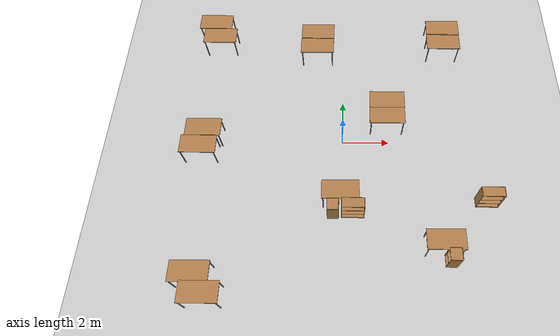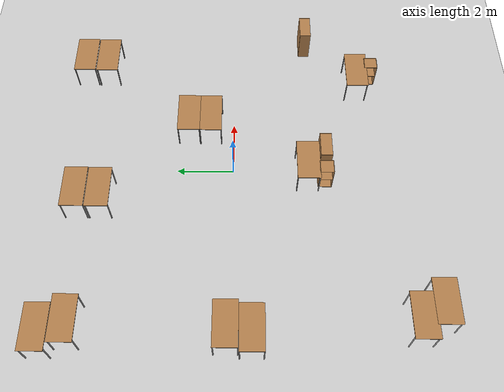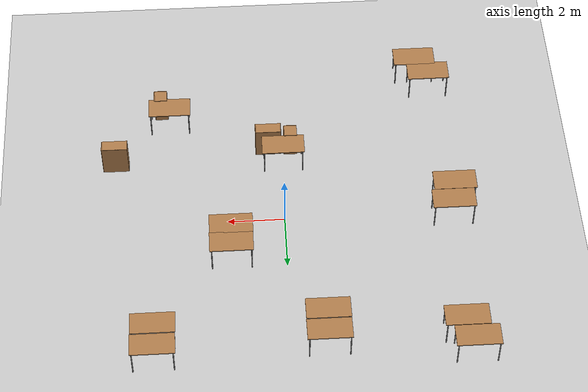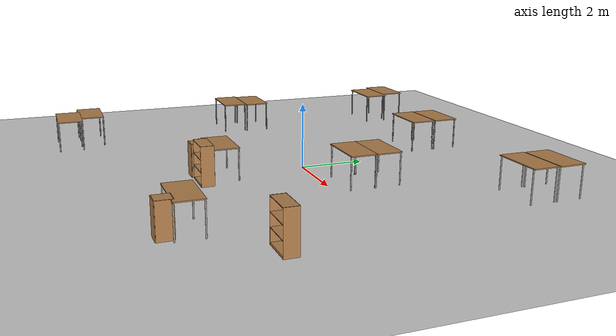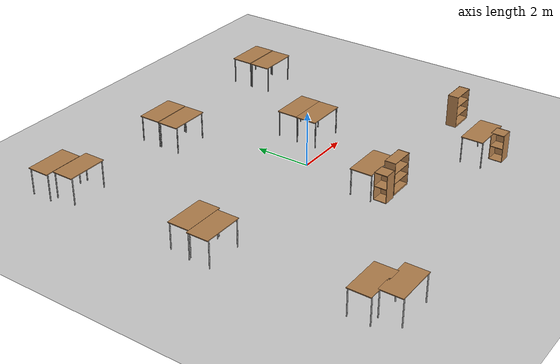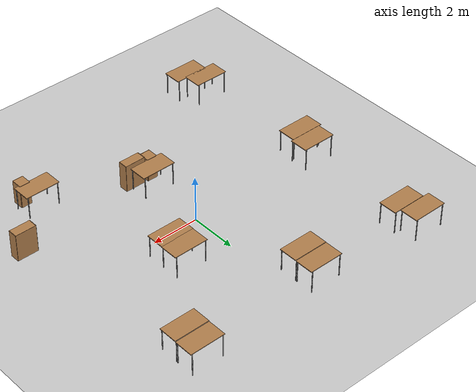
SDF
<sdf version="1.6">
 <world name="default">
  <light name="sun" type="directional">
   <cast_shadows>0</cast_shadows>
   <pose>0 0 10 0 -0 0</pose>
   <diffuse>0.8 0.8 0.8 1</diffuse>
   <specular>0.1 0.1 0.1 1</specular>
   <attenuation>
    <range>1000</range>
    <constant>0.9</constant>
    <linear>0.01</linear>
    <quadratic>0.001</quadratic>
   </attenuation>
   <direction>-0.5 0.5 -1</direction>
  </light>
  <model name="ground_plane">
   <static>1</static>
   <link name="link">
    <collision name="collision">
     <geometry><plane><normal>0 0 1</normal><size>100 100</size></plane></geometry>
     <surface><friction><ode><mu>100</mu><mu2>50</mu2></ode></friction></surface>
    </collision>
    <visual name="visual">
     <cast_shadows>0</cast_shadows>
     <geometry><plane><normal>0 0 1</normal><size>100 100</size></plane></geometry>
     <material>
      <script><uri>file://media/materials/scripts/gazebo.material</uri><name>Gazebo/Grey</name></script>
     </material>
    </visual>
   </link>
  </model>
  <gravity>0 0 -9.8</gravity>
  <magnetic_field>6e-06 2.3e-05 -4.2e-05</magnetic_field>
  <atmosphere type="adiabatic"/>
  <physics name="default_physics" default="0" type="ode">
   <max_step_size>0.001</max_step_size>
   <real_time_factor>1</real_time_factor>
   <real_time_update_rate>1000</real_time_update_rate>
  </physics>
  <scene><ambient>0.4 0.4 0.4 1</ambient><background>0.7 0.7 0.7 1</background><shadows>1</shadows></scene>
  <spherical_coordinates>
   <surface_model>EARTH_WGS84</surface_model>
   <latitude_deg>0</latitude_deg>
   <longitude_deg>0</longitude_deg>
   <elevation>0</elevation>
   <heading_deg>0</heading_deg>
  </spherical_coordinates>
  <model name="cabinet">
   <static>1</static>
   <link name="cabinet_bottom_plate">
    <inertial>
     <pose>0 0 -1 0 -0 0</pose>
     <inertia><ixx>2.05</ixx><ixy>0</ixy><ixz>0</ixz><iyy>2.05</iyy><iyz>0</iyz><izz>2.05</izz></inertia>
     <mass>25</mass>
    </inertial>
    <collision name="cabinet_bottom_plate_geom">
     <pose>0 0 0.01 0 -0 0</pose>
     <geometry><box><size>0.45 0.45 0.02</size></box></geometry>
    </collision>
    <visual name="cabinet_bottom_plate_geom_visual">
     <pose>0 0 0.01 0 -0 0</pose>
     <geometry><box><size>0.45 0.45 0.02</size></box></geometry>
     <material>
      <script><uri>file://media/materials/scripts/gazebo.material</uri><name>Gazebo/Wood</name></script>
     </material>
    </visual>
    <collision name="cabinet_bottom_plate_geom_cabinet_back_plate">
     <pose>0.235 0 0.51 0 -0 0</pose>
     <geometry><box><size>0.02 0.45 1.02</size></box></geometry>
    </collision>
    <visual name="cabinet_bottom_plate_geom_cabinet_back_plate_visual">
     <pose>0.235 0 0.51 0 -0 0</pose>
     <geometry><box><size>0.02 0.45 1.02</size></box></geometry>
     <material>
      <script><uri>file://media/materials/scripts/gazebo.material</uri><name>Gazebo/Wood</name></script>
     </material>
    </visual>
    <collision name="cabinet_bottom_plate_geom_cabinet_left_plate">
     <pose>0 0.235 0.51 0 -0 0</pose>
     <geometry><box><size>0.45 0.02 1.02</size></box></geometry>
    </collision>
    <visual name="cabinet_bottom_plate_geom_cabinet_left_plate_visual">
     <pose>0 0.235 0.51 0 -0 0</pose>
     <geometry><box><size>0.45 0.02 1.02</size></box></geometry>
     <material>
      <script><uri>file://media/materials/scripts/gazebo.material</uri><name>Gazebo/Wood</name></script>
     </material>
    </visual>
    <collision name="cabinet_bottom_plate_geom_cabinet_middle_plate">
     <pose>0 0 0.51 0 -0 0</pose>
     <geometry><box><size>0.45 0.45 0.02</size></box></geometry>
    </collision>
    <visual name="cabinet_bottom_plate_geom_cabinet_middle_plate_visual">
     <pose>0 0 0.51 0 -0 0</pose>
     <geometry><box><size>0.45 0.45 0.02</size></box></geometry>
     <material>
      <script><uri>file://media/materials/scripts/gazebo.material</uri><name>Gazebo/Wood</name></script>
     </material>
    </visual>
    <collision name="cabinet_bottom_plate_geom_cabinet_right_plate">
     <pose>0 -0.235 0.51 0 -0 0</pose>
     <geometry><box><size>0.45 0.02 1.02</size></box></geometry>
    </collision>
    <visual name="cabinet_bottom_plate_geom_cabinet_right_plate_visual">
     <pose>0 -0.235 0.51 0 -0 0</pose>
     <geometry><box><size>0.45 0.02 1.02</size></box></geometry>
     <material>
      <script><uri>file://media/materials/scripts/gazebo.material</uri><name>Gazebo/Wood</name></script>
     </material>
    </visual>
    <collision name="cabinet_bottom_plate_geom_cabinet_top_plate">
     <pose>0 0 1.01 0 -0 0</pose>
     <geometry><box><size>0.45 0.45 0.02</size></box></geometry>
    </collision>
    <visual name="cabinet_bottom_plate_geom_cabinet_top_plate_visual">
     <pose>0 0 1.01 0 -0 0</pose>
     <geometry><box><size>0.45 0.45 0.02</size></box></geometry>
     <material>
      <script><uri>file://media/materials/scripts/gazebo.material</uri><name>Gazebo/Wood</name></script>
     </material>
    </visual>
   </link>
   <pose>4.23229 -5.13046 0 0 -0 0</pose>
  </model>
  <model name="bookshelf">
   <static>1</static>
   <link name="link">
    <inertial><mass>1</mass></inertial>
    <collision name="back">
     <pose>0 0.005 0.6 0 -0 0</pose>
     <geometry><box><size>0.9 0.01 1.2</size></box></geometry>
    </collision>
    <visual name="visual1">
     <pose>0 0.005 0.6 0 -0 0</pose>
     <geometry><box><size>0.9 0.01 1.2</size></box></geometry>
     <material>
      <script><uri>file://media/materials/scripts/gazebo.material</uri><name>Gazebo/Wood</name></script>
     </material>
    </visual>
    <collision name="left_side">
     <pose>0.45 -0.195 0.6 0 -0 0</pose>
     <geometry><box><size>0.02 0.4 1.2</size></box></geometry>
    </collision>
    <visual name="visual2">
     <pose>0.45 -0.195 0.6 0 -0 0</pose>
     <geometry><box><size>0.02 0.4 1.2</size></box></geometry>
     <material>
      <script><uri>file://media/materials/scripts/gazebo.material</uri><name>Gazebo/Wood</name></script>
     </material>
    </visual>
    <collision name="right_side">
     <pose>-0.45 -0.195 0.6 0 -0 0</pose>
     <geometry><box><size>0.02 0.4 1.2</size></box></geometry>
    </collision>
    <visual name="visual3">
     <pose>-0.45 -0.195 0.6 0 -0 0</pose>
     <geometry><box><size>0.02 0.4 1.2</size></box></geometry>
     <material>
      <script><uri>file://media/materials/scripts/gazebo.material</uri><name>Gazebo/Wood</name></script>
     </material>
    </visual>
    <collision name="bottom">
     <pose>0 -0.195 0.03 0 -0 0</pose>
     <geometry><box><size>0.88 0.4 0.06</size></box></geometry>
    </collision>
    <visual name="visual4">
     <pose>0 -0.195 0.03 0 -0 0</pose>
     <geometry><box><size>0.88 0.4 0.06</size></box></geometry>
     <material>
      <script><uri>file://media/materials/scripts/gazebo.material</uri><name>Gazebo/Wood</name></script>
     </material>
    </visual>
    <collision name="top">
     <pose>0 -0.195 1.19 0 -0 0</pose>
     <geometry><box><size>0.88 0.4 0.02</size></box></geometry>
    </collision>
    <visual name="visual5">
     <pose>0 -0.195 1.19 0 -0 0</pose>
     <geometry><box><size>0.88 0.4 0.02</size></box></geometry>
     <material>
      <script><uri>file://media/materials/scripts/gazebo.material</uri><name>Gazebo/Wood</name></script>
     </material>
    </visual>
    <collision name="low_shelf">
     <pose>0 -0.195 0.43 0 -0 0</pose>
     <geometry><box><size>0.88 0.4 0.02</size></box></geometry>
    </collision>
    <visual name="visual6">
     <pose>0 -0.195 0.43 0 -0 0</pose>
     <geometry><box><size>0.88 0.4 0.02</size></box></geometry>
     <material>
      <script><uri>file://media/materials/scripts/gazebo.material</uri><name>Gazebo/Wood</name></script>
     </material>
    </visual>
    <collision name="high_shelf">
     <pose>0 -0.195 0.8 0 -0 0</pose>
     <geometry><box><size>0.88 0.4 0.02</size></box></geometry>
    </collision>
    <visual name="visual7">
     <pose>0 -0.195 0.8 0 -0 0</pose>
     <geometry><box><size>0.88 0.4 0.02</size></box></geometry>
     <material>
      <script><uri>file://media/materials/scripts/gazebo.material</uri><name>Gazebo/Wood</name></script>
     </material>
    </visual>
   </link>
   <pose>5.88793 -2.5165 0 0 -0 0</pose>
  </model>
  <model name="bookshelf_0">
   <static>1</static>
   <link name="link">
    <inertial><mass>1</mass></inertial>
    <collision name="back">
     <pose>0 0.005 0.6 0 -0 0</pose>
     <geometry><box><size>0.9 0.01 1.2</size></box></geometry>
    </collision>
    <visual name="visual1">
     <pose>0 0.005 0.6 0 -0 0</pose>
     <geometry><box><size>0.9 0.01 1.2</size></box></geometry>
     <material>
      <script><uri>file://media/materials/scripts/gazebo.material</uri><name>Gazebo/Wood</name></script>
     </material>
    </visual>
    <collision name="left_side">
     <pose>0.45 -0.195 0.6 0 -0 0</pose>
     <geometry><box><size>0.02 0.4 1.2</size></box></geometry>
    </collision>
    <visual name="visual2">
     <pose>0.45 -0.195 0.6 0 -0 0</pose>
     <geometry><box><size>0.02 0.4 1.2</size></box></geometry>
     <material>
      <script><uri>file://media/materials/scripts/gazebo.material</uri><name>Gazebo/Wood</name></script>
     </material>
    </visual>
    <collision name="right_side">
     <pose>-0.45 -0.195 0.6 0 -0 0</pose>
     <geometry><box><size>0.02 0.4 1.2</size></box></geometry>
    </collision>
    <visual name="visual3">
     <pose>-0.45 -0.195 0.6 0 -0 0</pose>
     <geometry><box><size>0.02 0.4 1.2</size></box></geometry>
     <material>
      <script><uri>file://media/materials/scripts/gazebo.material</uri><name>Gazebo/Wood</name></script>
     </material>
    </visual>
    <collision name="bottom">
     <pose>0 -0.195 0.03 0 -0 0</pose>
     <geometry><box><size>0.88 0.4 0.06</size></box></geometry>
    </collision>
    <visual name="visual4">
     <pose>0 -0.195 0.03 0 -0 0</pose>
     <geometry><box><size>0.88 0.4 0.06</size></box></geometry>
     <material>
      <script><uri>file://media/materials/scripts/gazebo.material</uri><name>Gazebo/Wood</name></script>
     </material>
    </visual>
    <collision name="top">
     <pose>0 -0.195 1.19 0 -0 0</pose>
     <geometry><box><size>0.88 0.4 0.02</size></box></geometry>
    </collision>
    <visual name="visual5">
     <pose>0 -0.195 1.19 0 -0 0</pose>
     <geometry><box><size>0.88 0.4 0.02</size></box></geometry>
     <material>
      <script><uri>file://media/materials/scripts/gazebo.material</uri><name>Gazebo/Wood</name></script>
     </material>
    </visual>
    <collision name="low_shelf">
     <pose>0 -0.195 0.43 0 -0 0</pose>
     <geometry><box><size>0.88 0.4 0.02</size></box></geometry>
    </collision>
    <visual name="visual6">
     <pose>0 -0.195 0.43 0 -0 0</pose>
     <geometry><box><size>0.88 0.4 0.02</size></box></geometry>
     <material>
      <script><uri>file://media/materials/scripts/gazebo.material</uri><name>Gazebo/Wood</name></script>
     </material>
    </visual>
    <collision name="high_shelf">
     <pose>0 -0.195 0.8 0 -0 0</pose>
     <geometry><box><size>0.88 0.4 0.02</size></box></geometry>
    </collision>
    <visual name="visual7">
     <pose>0 -0.195 0.8 0 -0 0</pose>
     <geometry><box><size>0.88 0.4 0.02</size></box></geometry>
     <material>
      <script><uri>file://media/materials/scripts/gazebo.material</uri><name>Gazebo/Wood</name></script>
     </material>
    </visual>
   </link>
   <pose>0.424738 -3.02847 0 0 -0 0</pose>
  </model>
  <model name="table">
   <static>1</static>
   <link name="link">
    <collision name="surface">
     <pose>0 0 1 0 -0 0</pose>
     <geometry><box><size>1.5 0.8 0.03</size></box></geometry>
     <surface><friction><ode><mu>0.6</mu><mu2>0.6</mu2></ode></friction></surface>
    </collision>
    <visual name="visual1">
     <pose>0 0 1 0 -0 0</pose>
     <geometry><box><size>1.5 0.8 0.03</size></box></geometry>
     <material>
      <script><uri>file://media/materials/scripts/gazebo.material</uri><name>Gazebo/Wood</name></script>
     </material>
    </visual>
    <collision name="front_left_leg">
     <pose>0.68 0.38 0.5 0 -0 0</pose>
     <geometry><cylinder><radius>0.02</radius><length>1</length></cylinder></geometry>
    </collision>
    <visual name="front_left_leg">
     <pose>0.68 0.38 0.5 0 -0 0</pose>
     <geometry><cylinder><radius>0.02</radius><length>1</length></cylinder></geometry>
     <material>
      <script><uri>file://media/materials/scripts/gazebo.material</uri><name>Gazebo/Grey</name></script>
     </material>
    </visual>
    <collision name="front_right_leg">
     <pose>0.68 -0.38 0.5 0 -0 0</pose>
     <geometry><cylinder><radius>0.02</radius><length>1</length></cylinder></geometry>
    </collision>
    <visual name="front_right_leg">
     <pose>0.68 -0.38 0.5 0 -0 0</pose>
     <geometry><cylinder><radius>0.02</radius><length>1</length></cylinder></geometry>
     <material>
      <script><uri>file://media/materials/scripts/gazebo.material</uri><name>Gazebo/Grey</name></script>
     </material>
    </visual>
    <collision name="back_right_leg">
     <pose>-0.68 -0.38 0.5 0 -0 0</pose>
     <geometry><cylinder><radius>0.02</radius><length>1</length></cylinder></geometry>
    </collision>
    <visual name="back_right_leg">
     <pose>-0.68 -0.38 0.5 0 -0 0</pose>
     <geometry><cylinder><radius>0.02</radius><length>1</length></cylinder></geometry>
     <material>
      <script><uri>file://media/materials/scripts/gazebo.material</uri><name>Gazebo/Grey</name></script>
     </material>
    </visual>
    <collision name="back_left_leg">
     <pose>-0.68 0.38 0.5 0 -0 0</pose>
     <geometry><cylinder><radius>0.02</radius><length>1</length></cylinder></geometry>
    </collision>
    <visual name="back_left_leg">
     <pose>-0.68 0.38 0.5 0 -0 0</pose>
     <geometry><cylinder><radius>0.02</radius><length>1</length></cylinder></geometry>
     <material>
      <script><uri>file://media/materials/scripts/gazebo.material</uri><name>Gazebo/Grey</name></script>
     </material>
    </visual>
   </link>
   <pose>-0.079983 -2.60231 0 0 -0 0</pose>
  </model>
  <model name="table_0">
   <static>1</static>
   <link name="link">
    <collision name="surface">
     <pose>0 0 1 0 -0 0</pose>
     <geometry><box><size>1.5 0.8 0.03</size></box></geometry>
     <surface><friction><ode><mu>0.6</mu><mu2>0.6</mu2></ode></friction></surface>
    </collision>
    <visual name="visual1">
     <pose>0 0 1 0 -0 0</pose>
     <geometry><box><size>1.5 0.8 0.03</size></box></geometry>
     <material>
      <script><uri>file://media/materials/scripts/gazebo.material</uri><name>Gazebo/Wood</name></script>
     </material>
    </visual>
    <collision name="front_left_leg">
     <pose>0.68 0.38 0.5 0 -0 0</pose>
     <geometry><cylinder><radius>0.02</radius><length>1</length></cylinder></geometry>
    </collision>
    <visual name="front_left_leg">
     <pose>0.68 0.38 0.5 0 -0 0</pose>
     <geometry><cylinder><radius>0.02</radius><length>1</length></cylinder></geometry>
     <material>
      <script><uri>file://media/materials/scripts/gazebo.material</uri><name>Gazebo/Grey</name></script>
     </material>
    </visual>
    <collision name="front_right_leg">
     <pose>0.68 -0.38 0.5 0 -0 0</pose>
     <geometry><cylinder><radius>0.02</radius><length>1</length></cylinder></geometry>
    </collision>
    <visual name="front_right_leg">
     <pose>0.68 -0.38 0.5 0 -0 0</pose>
     <geometry><cylinder><radius>0.02</radius><length>1</length></cylinder></geometry>
     <material>
      <script><uri>file://media/materials/scripts/gazebo.material</uri><name>Gazebo/Grey</name></script>
     </material>
    </visual>
    <collision name="back_right_leg">
     <pose>-0.68 -0.38 0.5 0 -0 0</pose>
     <geometry><cylinder><radius>0.02</radius><length>1</length></cylinder></geometry>
    </collision>
    <visual name="back_right_leg">
     <pose>-0.68 -0.38 0.5 0 -0 0</pose>
     <geometry><cylinder><radius>0.02</radius><length>1</length></cylinder></geometry>
     <material>
      <script><uri>file://media/materials/scripts/gazebo.material</uri><name>Gazebo/Grey</name></script>
     </material>
    </visual>
    <collision name="back_left_leg">
     <pose>-0.68 0.38 0.5 0 -0 0</pose>
     <geometry><cylinder><radius>0.02</radius><length>1</length></cylinder></geometry>
    </collision>
    <visual name="back_left_leg">
     <pose>-0.68 0.38 0.5 0 -0 0</pose>
     <geometry><cylinder><radius>0.02</radius><length>1</length></cylinder></geometry>
     <material>
      <script><uri>file://media/materials/scripts/gazebo.material</uri><name>Gazebo/Grey</name></script>
     </material>
    </visual>
   </link>
   <pose>-1.18424 5.36108 0 0 -0 0</pose>
  </model>
  <model name="table_1">
   <static>1</static>
   <link name="link">
    <collision name="surface">
     <pose>0 0 1 0 -0 0</pose>
     <geometry><box><size>1.5 0.8 0.03</size></box></geometry>
     <surface><friction><ode><mu>0.6</mu><mu2>0.6</mu2></ode></friction></surface>
    </collision>
    <visual name="visual1">
     <pose>0 0 1 0 -0 0</pose>
     <geometry><box><size>1.5 0.8 0.03</size></box></geometry>
     <material>
      <script><uri>file://media/materials/scripts/gazebo.material</uri><name>Gazebo/Wood</name></script>
     </material>
    </visual>
    <collision name="front_left_leg">
     <pose>0.68 0.38 0.5 0 -0 0</pose>
     <geometry><cylinder><radius>0.02</radius><length>1</length></cylinder></geometry>
    </collision>
    <visual name="front_left_leg">
     <pose>0.68 0.38 0.5 0 -0 0</pose>
     <geometry><cylinder><radius>0.02</radius><length>1</length></cylinder></geometry>
     <material>
      <script><uri>file://media/materials/scripts/gazebo.material</uri><name>Gazebo/Grey</name></script>
     </material>
    </visual>
    <collision name="front_right_leg">
     <pose>0.68 -0.38 0.5 0 -0 0</pose>
     <geometry><cylinder><radius>0.02</radius><length>1</length></cylinder></geometry>
    </collision>
    <visual name="front_right_leg">
     <pose>0.68 -0.38 0.5 0 -0 0</pose>
     <geometry><cylinder><radius>0.02</radius><length>1</length></cylinder></geometry>
     <material>
      <script><uri>file://media/materials/scripts/gazebo.material</uri><name>Gazebo/Grey</name></script>
     </material>
    </visual>
    <collision name="back_right_leg">
     <pose>-0.68 -0.38 0.5 0 -0 0</pose>
     <geometry><cylinder><radius>0.02</radius><length>1</length></cylinder></geometry>
    </collision>
    <visual name="back_right_leg">
     <pose>-0.68 -0.38 0.5 0 -0 0</pose>
     <geometry><cylinder><radius>0.02</radius><length>1</length></cylinder></geometry>
     <material>
      <script><uri>file://media/materials/scripts/gazebo.material</uri><name>Gazebo/Grey</name></script>
     </material>
    </visual>
    <collision name="back_left_leg">
     <pose>-0.68 0.38 0.5 0 -0 0</pose>
     <geometry><cylinder><radius>0.02</radius><length>1</length></cylinder></geometry>
    </collision>
    <visual name="back_left_leg">
     <pose>-0.68 0.38 0.5 0 -0 0</pose>
     <geometry><cylinder><radius>0.02</radius><length>1</length></cylinder></geometry>
     <material>
      <script><uri>file://media/materials/scripts/gazebo.material</uri><name>Gazebo/Grey</name></script>
     </material>
    </visual>
   </link>
   <pose>-1.19395 4.53347 0 0 -0 0</pose>
  </model>
  <model name="table_2">
   <static>1</static>
   <link name="link">
    <collision name="surface">
     <pose>0 0 1 0 -0 0</pose>
     <geometry><box><size>1.5 0.8 0.03</size></box></geometry>
     <surface><friction><ode><mu>0.6</mu><mu2>0.6</mu2></ode></friction></surface>
    </collision>
    <visual name="visual1">
     <pose>0 0 1 0 -0 0</pose>
     <geometry><box><size>1.5 0.8 0.03</size></box></geometry>
     <material>
      <script><uri>file://media/materials/scripts/gazebo.material</uri><name>Gazebo/Wood</name></script>
     </material>
    </visual>
    <collision name="front_left_leg">
     <pose>0.68 0.38 0.5 0 -0 0</pose>
     <geometry><cylinder><radius>0.02</radius><length>1</length></cylinder></geometry>
    </collision>
    <visual name="front_left_leg">
     <pose>0.68 0.38 0.5 0 -0 0</pose>
     <geometry><cylinder><radius>0.02</radius><length>1</length></cylinder></geometry>
     <material>
      <script><uri>file://media/materials/scripts/gazebo.material</uri><name>Gazebo/Grey</name></script>
     </material>
    </visual>
    <collision name="front_right_leg">
     <pose>0.68 -0.38 0.5 0 -0 0</pose>
     <geometry><cylinder><radius>0.02</radius><length>1</length></cylinder></geometry>
    </collision>
    <visual name="front_right_leg">
     <pose>0.68 -0.38 0.5 0 -0 0</pose>
     <geometry><cylinder><radius>0.02</radius><length>1</length></cylinder></geometry>
     <material>
      <script><uri>file://media/materials/scripts/gazebo.material</uri><name>Gazebo/Grey</name></script>
     </material>
    </visual>
    <collision name="back_right_leg">
     <pose>-0.68 -0.38 0.5 0 -0 0</pose>
     <geometry><cylinder><radius>0.02</radius><length>1</length></cylinder></geometry>
    </collision>
    <visual name="back_right_leg">
     <pose>-0.68 -0.38 0.5 0 -0 0</pose>
     <geometry><cylinder><radius>0.02</radius><length>1</length></cylinder></geometry>
     <material>
      <script><uri>file://media/materials/scripts/gazebo.material</uri><name>Gazebo/Grey</name></script>
     </material>
    </visual>
    <collision name="back_left_leg">
     <pose>-0.68 0.38 0.5 0 -0 0</pose>
     <geometry><cylinder><radius>0.02</radius><length>1</length></cylinder></geometry>
    </collision>
    <visual name="back_left_leg">
     <pose>-0.68 0.38 0.5 0 -0 0</pose>
     <geometry><cylinder><radius>0.02</radius><length>1</length></cylinder></geometry>
     <material>
      <script><uri>file://media/materials/scripts/gazebo.material</uri><name>Gazebo/Grey</name></script>
     </material>
    </visual>
   </link>
   <pose>4.61816 5.644 0 0 -0 0</pose>
  </model>
  <model name="table_3">
   <static>1</static>
   <link name="link">
    <collision name="surface">
     <pose>0 0 1 0 -0 0</pose>
     <geometry><box><size>1.5 0.8 0.03</size></box></geometry>
     <surface><friction><ode><mu>0.6</mu><mu2>0.6</mu2></ode></friction></surface>
    </collision>
    <visual name="visual1">
     <pose>0 0 1 0 -0 0</pose>
     <geometry><box><size>1.5 0.8 0.03</size></box></geometry>
     <material>
      <script><uri>file://media/materials/scripts/gazebo.material</uri><name>Gazebo/Wood</name></script>
     </material>
    </visual>
    <collision name="front_left_leg">
     <pose>0.68 0.38 0.5 0 -0 0</pose>
     <geometry><cylinder><radius>0.02</radius><length>1</length></cylinder></geometry>
    </collision>
    <visual name="front_left_leg">
     <pose>0.68 0.38 0.5 0 -0 0</pose>
     <geometry><cylinder><radius>0.02</radius><length>1</length></cylinder></geometry>
     <material>
      <script><uri>file://media/materials/scripts/gazebo.material</uri><name>Gazebo/Grey</name></script>
     </material>
    </visual>
    <collision name="front_right_leg">
     <pose>0.68 -0.38 0.5 0 -0 0</pose>
     <geometry><cylinder><radius>0.02</radius><length>1</length></cylinder></geometry>
    </collision>
    <visual name="front_right_leg">
     <pose>0.68 -0.38 0.5 0 -0 0</pose>
     <geometry><cylinder><radius>0.02</radius><length>1</length></cylinder></geometry>
     <material>
      <script><uri>file://media/materials/scripts/gazebo.material</uri><name>Gazebo/Grey</name></script>
     </material>
    </visual>
    <collision name="back_right_leg">
     <pose>-0.68 -0.38 0.5 0 -0 0</pose>
     <geometry><cylinder><radius>0.02</radius><length>1</length></cylinder></geometry>
    </collision>
    <visual name="back_right_leg">
     <pose>-0.68 -0.38 0.5 0 -0 0</pose>
     <geometry><cylinder><radius>0.02</radius><length>1</length></cylinder></geometry>
     <material>
      <script><uri>file://media/materials/scripts/gazebo.material</uri><name>Gazebo/Grey</name></script>
     </material>
    </visual>
    <collision name="back_left_leg">
     <pose>-0.68 0.38 0.5 0 -0 0</pose>
     <geometry><cylinder><radius>0.02</radius><length>1</length></cylinder></geometry>
    </collision>
    <visual name="back_left_leg">
     <pose>-0.68 0.38 0.5 0 -0 0</pose>
     <geometry><cylinder><radius>0.02</radius><length>1</length></cylinder></geometry>
     <material>
      <script><uri>file://media/materials/scripts/gazebo.material</uri><name>Gazebo/Grey</name></script>
     </material>
    </visual>
   </link>
   <pose>4.60045 4.80968 0 0 -0 0</pose>
  </model>
  <model name="cabinet_clone">
   <static>1</static>
   <link name="cabinet_bottom_plate">
    <inertial>
     <pose>0 0 -1 0 -0 0</pose>
     <inertia><ixx>2.05</ixx><ixy>0</ixy><ixz>0</ixz><iyy>2.05</iyy><iyz>0</iyz><izz>2.05</izz></inertia>
     <mass>25</mass>
    </inertial>
    <collision name="cabinet_bottom_plate_geom">
     <pose>0 0 0.01 0 -0 0</pose>
     <geometry><box><size>0.45 0.45 0.02</size></box></geometry>
    </collision>
    <visual name="cabinet_bottom_plate_geom_visual">
     <pose>0 0 0.01 0 -0 0</pose>
     <geometry><box><size>0.45 0.45 0.02</size></box></geometry>
     <material>
      <script><uri>file://media/materials/scripts/gazebo.material</uri><name>Gazebo/Wood</name></script>
     </material>
    </visual>
    <collision name="cabinet_bottom_plate_geom_cabinet_back_plate">
     <pose>0.235 0 0.51 0 -0 0</pose>
     <geometry><box><size>0.02 0.45 1.02</size></box></geometry>
    </collision>
    <visual name="cabinet_bottom_plate_geom_cabinet_back_plate_visual">
     <pose>0.235 0 0.51 0 -0 0</pose>
     <geometry><box><size>0.02 0.45 1.02</size></box></geometry>
     <material>
      <script><uri>file://media/materials/scripts/gazebo.material</uri><name>Gazebo/Wood</name></script>
     </material>
    </visual>
    <collision name="cabinet_bottom_plate_geom_cabinet_left_plate">
     <pose>0 0.235 0.51 0 -0 0</pose>
     <geometry><box><size>0.45 0.02 1.02</size></box></geometry>
    </collision>
    <visual name="cabinet_bottom_plate_geom_cabinet_left_plate_visual">
     <pose>0 0.235 0.51 0 -0 0</pose>
     <geometry><box><size>0.45 0.02 1.02</size></box></geometry>
     <material>
      <script><uri>file://media/materials/scripts/gazebo.material</uri><name>Gazebo/Wood</name></script>
     </material>
    </visual>
    <collision name="cabinet_bottom_plate_geom_cabinet_middle_plate">
     <pose>0 0 0.51 0 -0 0</pose>
     <geometry><box><size>0.45 0.45 0.02</size></box></geometry>
    </collision>
    <visual name="cabinet_bottom_plate_geom_cabinet_middle_plate_visual">
     <pose>0 0 0.51 0 -0 0</pose>
     <geometry><box><size>0.45 0.45 0.02</size></box></geometry>
     <material>
      <script><uri>file://media/materials/scripts/gazebo.material</uri><name>Gazebo/Wood</name></script>
     </material>
    </visual>
    <collision name="cabinet_bottom_plate_geom_cabinet_right_plate">
     <pose>0 -0.235 0.51 0 -0 0</pose>
     <geometry><box><size>0.45 0.02 1.02</size></box></geometry>
    </collision>
    <visual name="cabinet_bottom_plate_geom_cabinet_right_plate_visual">
     <pose>0 -0.235 0.51 0 -0 0</pose>
     <geometry><box><size>0.45 0.02 1.02</size></box></geometry>
     <material>
      <script><uri>file://media/materials/scripts/gazebo.material</uri><name>Gazebo/Wood</name></script>
     </material>
    </visual>
    <collision name="cabinet_bottom_plate_geom_cabinet_top_plate">
     <pose>0 0 1.01 0 -0 0</pose>
     <geometry><box><size>0.45 0.45 0.02</size></box></geometry>
    </collision>
    <visual name="cabinet_bottom_plate_geom_cabinet_top_plate_visual">
     <pose>0 0 1.01 0 -0 0</pose>
     <geometry><box><size>0.45 0.45 0.02</size></box></geometry>
     <material>
      <script><uri>file://media/materials/scripts/gazebo.material</uri><name>Gazebo/Wood</name></script>
     </material>
    </visual>
   </link>
   <pose>-0.373564 -3.22224 0 0 -0 0</pose>
  </model>
  <model name="table_1_clone">
   <static>1</static>
   <link name="link">
    <collision name="surface">
     <pose>0 0 1 0 -0 0</pose>
     <geometry><box><size>1.5 0.8 0.03</size></box></geometry>
     <surface><friction><ode><mu>0.6</mu><mu2>0.6</mu2></ode></friction></surface>
    </collision>
    <visual name="visual1">
     <pose>0 0 1 0 -0 0</pose>
     <geometry><box><size>1.5 0.8 0.03</size></box></geometry>
     <material>
      <script><uri>file://media/materials/scripts/gazebo.material</uri><name>Gazebo/Wood</name></script>
     </material>
    </visual>
    <collision name="front_left_leg">
     <pose>0.68 0.38 0.5 0 -0 0</pose>
     <geometry><cylinder><radius>0.02</radius><length>1</length></cylinder></geometry>
    </collision>
    <visual name="front_left_leg">
     <pose>0.68 0.38 0.5 0 -0 0</pose>
     <geometry><cylinder><radius>0.02</radius><length>1</length></cylinder></geometry>
     <material>
      <script><uri>file://media/materials/scripts/gazebo.material</uri><name>Gazebo/Grey</name></script>
     </material>
    </visual>
    <collision name="front_right_leg">
     <pose>0.68 -0.38 0.5 0 -0 0</pose>
     <geometry><cylinder><radius>0.02</radius><length>1</length></cylinder></geometry>
    </collision>
    <visual name="front_right_leg">
     <pose>0.68 -0.38 0.5 0 -0 0</pose>
     <geometry><cylinder><radius>0.02</radius><length>1</length></cylinder></geometry>
     <material>
      <script><uri>file://media/materials/scripts/gazebo.material</uri><name>Gazebo/Grey</name></script>
     </material>
    </visual>
    <collision name="back_right_leg">
     <pose>-0.68 -0.38 0.5 0 -0 0</pose>
     <geometry><cylinder><radius>0.02</radius><length>1</length></cylinder></geometry>
    </collision>
    <visual name="back_right_leg">
     <pose>-0.68 -0.38 0.5 0 -0 0</pose>
     <geometry><cylinder><radius>0.02</radius><length>1</length></cylinder></geometry>
     <material>
      <script><uri>file://media/materials/scripts/gazebo.material</uri><name>Gazebo/Grey</name></script>
     </material>
    </visual>
    <collision name="back_left_leg">
     <pose>-0.68 0.38 0.5 0 -0 0</pose>
     <geometry><cylinder><radius>0.02</radius><length>1</length></cylinder></geometry>
    </collision>
    <visual name="back_left_leg">
     <pose>-0.68 0.38 0.5 0 -0 0</pose>
     <geometry><cylinder><radius>0.02</radius><length>1</length></cylinder></geometry>
     <material>
      <script><uri>file://media/materials/scripts/gazebo.material</uri><name>Gazebo/Grey</name></script>
     </material>
    </visual>
   </link>
   <pose>-5.73014 5.0657 0 0 -0 0</pose>
  </model>
  <model name="table_1_clone_0">
   <static>1</static>
   <link name="link">
    <collision name="surface">
     <pose>0 0 1 0 -0 0</pose>
     <geometry><box><size>1.5 0.8 0.03</size></box></geometry>
     <surface><friction><ode><mu>0.6</mu><mu2>0.6</mu2></ode></friction></surface>
    </collision>
    <visual name="visual1">
     <pose>0 0 1 0 -0 0</pose>
     <geometry><box><size>1.5 0.8 0.03</size></box></geometry>
     <material>
      <script><uri>file://media/materials/scripts/gazebo.material</uri><name>Gazebo/Wood</name></script>
     </material>
    </visual>
    <collision name="front_left_leg">
     <pose>0.68 0.38 0.5 0 -0 0</pose>
     <geometry><cylinder><radius>0.02</radius><length>1</length></cylinder></geometry>
    </collision>
    <visual name="front_left_leg">
     <pose>0.68 0.38 0.5 0 -0 0</pose>
     <geometry><cylinder><radius>0.02</radius><length>1</length></cylinder></geometry>
     <material>
      <script><uri>file://media/materials/scripts/gazebo.material</uri><name>Gazebo/Grey</name></script>
     </material>
    </visual>
    <collision name="front_right_leg">
     <pose>0.68 -0.38 0.5 0 -0 0</pose>
     <geometry><cylinder><radius>0.02</radius><length>1</length></cylinder></geometry>
    </collision>
    <visual name="front_right_leg">
     <pose>0.68 -0.38 0.5 0 -0 0</pose>
     <geometry><cylinder><radius>0.02</radius><length>1</length></cylinder></geometry>
     <material>
      <script><uri>file://media/materials/scripts/gazebo.material</uri><name>Gazebo/Grey</name></script>
     </material>
    </visual>
    <collision name="back_right_leg">
     <pose>-0.68 -0.38 0.5 0 -0 0</pose>
     <geometry><cylinder><radius>0.02</radius><length>1</length></cylinder></geometry>
    </collision>
    <visual name="back_right_leg">
     <pose>-0.68 -0.38 0.5 0 -0 0</pose>
     <geometry><cylinder><radius>0.02</radius><length>1</length></cylinder></geometry>
     <material>
      <script><uri>file://media/materials/scripts/gazebo.material</uri><name>Gazebo/Grey</name></script>
     </material>
    </visual>
    <collision name="back_left_leg">
     <pose>-0.68 0.38 0.5 0 -0 0</pose>
     <geometry><cylinder><radius>0.02</radius><length>1</length></cylinder></geometry>
    </collision>
    <visual name="back_left_leg">
     <pose>-0.68 0.38 0.5 0 -0 0</pose>
     <geometry><cylinder><radius>0.02</radius><length>1</length></cylinder></geometry>
     <material>
      <script><uri>file://media/materials/scripts/gazebo.material</uri><name>Gazebo/Grey</name></script>
     </material>
    </visual>
   </link>
   <pose>-6.00013 5.8828 0 0 -0 0</pose>
  </model>
  <model name="table_1_clone_clone">
   <static>1</static>
   <link name="link">
    <collision name="surface">
     <pose>0 0 1 0 -0 0</pose>
     <geometry><box><size>1.5 0.8 0.03</size></box></geometry>
     <surface><friction><ode><mu>0.6</mu><mu2>0.6</mu2></ode></friction></surface>
    </collision>
    <visual name="visual1">
     <pose>0 0 1 0 -0 0</pose>
     <geometry><box><size>1.5 0.8 0.03</size></box></geometry>
     <material>
      <script><uri>file://media/materials/scripts/gazebo.material</uri><name>Gazebo/Wood</name></script>
     </material>
    </visual>
    <collision name="front_left_leg">
     <pose>0.68 0.38 0.5 0 -0 0</pose>
     <geometry><cylinder><radius>0.02</radius><length>1</length></cylinder></geometry>
    </collision>
    <visual name="front_left_leg">
     <pose>0.68 0.38 0.5 0 -0 0</pose>
     <geometry><cylinder><radius>0.02</radius><length>1</length></cylinder></geometry>
     <material>
      <script><uri>file://media/materials/scripts/gazebo.material</uri><name>Gazebo/Grey</name></script>
     </material>
    </visual>
    <collision name="front_right_leg">
     <pose>0.68 -0.38 0.5 0 -0 0</pose>
     <geometry><cylinder><radius>0.02</radius><length>1</length></cylinder></geometry>
    </collision>
    <visual name="front_right_leg">
     <pose>0.68 -0.38 0.5 0 -0 0</pose>
     <geometry><cylinder><radius>0.02</radius><length>1</length></cylinder></geometry>
     <material>
      <script><uri>file://media/materials/scripts/gazebo.material</uri><name>Gazebo/Grey</name></script>
     </material>
    </visual>
    <collision name="back_right_leg">
     <pose>-0.68 -0.38 0.5 0 -0 0</pose>
     <geometry><cylinder><radius>0.02</radius><length>1</length></cylinder></geometry>
    </collision>
    <visual name="back_right_leg">
     <pose>-0.68 -0.38 0.5 0 -0 0</pose>
     <geometry><cylinder><radius>0.02</radius><length>1</length></cylinder></geometry>
     <material>
      <script><uri>file://media/materials/scripts/gazebo.material</uri><name>Gazebo/Grey</name></script>
     </material>
    </visual>
    <collision name="back_left_leg">
     <pose>-0.68 0.38 0.5 0 -0 0</pose>
     <geometry><cylinder><radius>0.02</radius><length>1</length></cylinder></geometry>
    </collision>
    <visual name="back_left_leg">
     <pose>-0.68 0.38 0.5 0 -0 0</pose>
     <geometry><cylinder><radius>0.02</radius><length>1</length></cylinder></geometry>
     <material>
      <script><uri>file://media/materials/scripts/gazebo.material</uri><name>Gazebo/Grey</name></script>
     </material>
    </visual>
   </link>
   <pose>-5.86502 0.165513 0 0 -0 0</pose>
  </model>
  <model name="table_1_clone_clone_0">
   <static>1</static>
   <link name="link">
    <collision name="surface">
     <pose>0 0 1 0 -0 0</pose>
     <geometry><box><size>1.5 0.8 0.03</size></box></geometry>
     <surface><friction><ode><mu>0.6</mu><mu2>0.6</mu2></ode></friction></surface>
    </collision>
    <visual name="visual1">
     <pose>0 0 1 0 -0 0</pose>
     <geometry><box><size>1.5 0.8 0.03</size></box></geometry>
     <material>
      <script><uri>file://media/materials/scripts/gazebo.material</uri><name>Gazebo/Wood</name></script>
     </material>
    </visual>
    <collision name="front_left_leg">
     <pose>0.68 0.38 0.5 0 -0 0</pose>
     <geometry><cylinder><radius>0.02</radius><length>1</length></cylinder></geometry>
    </collision>
    <visual name="front_left_leg">
     <pose>0.68 0.38 0.5 0 -0 0</pose>
     <geometry><cylinder><radius>0.02</radius><length>1</length></cylinder></geometry>
     <material>
      <script><uri>file://media/materials/scripts/gazebo.material</uri><name>Gazebo/Grey</name></script>
     </material>
    </visual>
    <collision name="front_right_leg">
     <pose>0.68 -0.38 0.5 0 -0 0</pose>
     <geometry><cylinder><radius>0.02</radius><length>1</length></cylinder></geometry>
    </collision>
    <visual name="front_right_leg">
     <pose>0.68 -0.38 0.5 0 -0 0</pose>
     <geometry><cylinder><radius>0.02</radius><length>1</length></cylinder></geometry>
     <material>
      <script><uri>file://media/materials/scripts/gazebo.material</uri><name>Gazebo/Grey</name></script>
     </material>
    </visual>
    <collision name="back_right_leg">
     <pose>-0.68 -0.38 0.5 0 -0 0</pose>
     <geometry><cylinder><radius>0.02</radius><length>1</length></cylinder></geometry>
    </collision>
    <visual name="back_right_leg">
     <pose>-0.68 -0.38 0.5 0 -0 0</pose>
     <geometry><cylinder><radius>0.02</radius><length>1</length></cylinder></geometry>
     <material>
      <script><uri>file://media/materials/scripts/gazebo.material</uri><name>Gazebo/Grey</name></script>
     </material>
    </visual>
    <collision name="back_left_leg">
     <pose>-0.68 0.38 0.5 0 -0 0</pose>
     <geometry><cylinder><radius>0.02</radius><length>1</length></cylinder></geometry>
    </collision>
    <visual name="back_left_leg">
     <pose>-0.68 0.38 0.5 0 -0 0</pose>
     <geometry><cylinder><radius>0.02</radius><length>1</length></cylinder></geometry>
     <material>
      <script><uri>file://media/materials/scripts/gazebo.material</uri><name>Gazebo/Grey</name></script>
     </material>
    </visual>
   </link>
   <pose>-5.97958 -0.64179 0 0 -0 0</pose>
  </model>
  <model name="table_1_clone_clone_1">
   <static>1</static>
   <link name="link">
    <collision name="surface">
     <pose>0 0 1 0 -0 0</pose>
     <geometry><box><size>1.5 0.8 0.03</size></box></geometry>
     <surface><friction><ode><mu>0.6</mu><mu2>0.6</mu2></ode></friction></surface>
    </collision>
    <visual name="visual1">
     <pose>0 0 1 0 -0 0</pose>
     <geometry><box><size>1.5 0.8 0.03</size></box></geometry>
     <material>
      <script><uri>file://media/materials/scripts/gazebo.material</uri><name>Gazebo/Wood</name></script>
     </material>
    </visual>
    <collision name="front_left_leg">
     <pose>0.68 0.38 0.5 0 -0 0</pose>
     <geometry><cylinder><radius>0.02</radius><length>1</length></cylinder></geometry>
    </collision>
    <visual name="front_left_leg">
     <pose>0.68 0.38 0.5 0 -0 0</pose>
     <geometry><cylinder><radius>0.02</radius><length>1</length></cylinder></geometry>
     <material>
      <script><uri>file://media/materials/scripts/gazebo.material</uri><name>Gazebo/Grey</name></script>
     </material>
    </visual>
    <collision name="front_right_leg">
     <pose>0.68 -0.38 0.5 0 -0 0</pose>
     <geometry><cylinder><radius>0.02</radius><length>1</length></cylinder></geometry>
    </collision>
    <visual name="front_right_leg">
     <pose>0.68 -0.38 0.5 0 -0 0</pose>
     <geometry><cylinder><radius>0.02</radius><length>1</length></cylinder></geometry>
     <material>
      <script><uri>file://media/materials/scripts/gazebo.material</uri><name>Gazebo/Grey</name></script>
     </material>
    </visual>
    <collision name="back_right_leg">
     <pose>-0.68 -0.38 0.5 0 -0 0</pose>
     <geometry><cylinder><radius>0.02</radius><length>1</length></cylinder></geometry>
    </collision>
    <visual name="back_right_leg">
     <pose>-0.68 -0.38 0.5 0 -0 0</pose>
     <geometry><cylinder><radius>0.02</radius><length>1</length></cylinder></geometry>
     <material>
      <script><uri>file://media/materials/scripts/gazebo.material</uri><name>Gazebo/Grey</name></script>
     </material>
    </visual>
    <collision name="back_left_leg">
     <pose>-0.68 0.38 0.5 0 -0 0</pose>
     <geometry><cylinder><radius>0.02</radius><length>1</length></cylinder></geometry>
    </collision>
    <visual name="back_left_leg">
     <pose>-0.68 0.38 0.5 0 -0 0</pose>
     <geometry><cylinder><radius>0.02</radius><length>1</length></cylinder></geometry>
     <material>
      <script><uri>file://media/materials/scripts/gazebo.material</uri><name>Gazebo/Grey</name></script>
     </material>
    </visual>
   </link>
   <pose>-5.57466 -5.86249 0 0 -0 0</pose>
  </model>
  <model name="table_1_clone_clone_2">
   <static>1</static>
   <link name="link">
    <collision name="surface">
     <pose>0 0 1 0 -0 0</pose>
     <geometry><box><size>1.5 0.8 0.03</size></box></geometry>
     <surface><friction><ode><mu>0.6</mu><mu2>0.6</mu2></ode></friction></surface>
    </collision>
    <visual name="visual1">
     <pose>0 0 1 0 -0 0</pose>
     <geometry><box><size>1.5 0.8 0.03</size></box></geometry>
     <material>
      <script><uri>file://media/materials/scripts/gazebo.material</uri><name>Gazebo/Wood</name></script>
     </material>
    </visual>
    <collision name="front_left_leg">
     <pose>0.68 0.38 0.5 0 -0 0</pose>
     <geometry><cylinder><radius>0.02</radius><length>1</length></cylinder></geometry>
    </collision>
    <visual name="front_left_leg">
     <pose>0.68 0.38 0.5 0 -0 0</pose>
     <geometry><cylinder><radius>0.02</radius><length>1</length></cylinder></geometry>
     <material>
      <script><uri>file://media/materials/scripts/gazebo.material</uri><name>Gazebo/Grey</name></script>
     </material>
    </visual>
    <collision name="front_right_leg">
     <pose>0.68 -0.38 0.5 0 -0 0</pose>
     <geometry><cylinder><radius>0.02</radius><length>1</length></cylinder></geometry>
    </collision>
    <visual name="front_right_leg">
     <pose>0.68 -0.38 0.5 0 -0 0</pose>
     <geometry><cylinder><radius>0.02</radius><length>1</length></cylinder></geometry>
     <material>
      <script><uri>file://media/materials/scripts/gazebo.material</uri><name>Gazebo/Grey</name></script>
     </material>
    </visual>
    <collision name="back_right_leg">
     <pose>-0.68 -0.38 0.5 0 -0 0</pose>
     <geometry><cylinder><radius>0.02</radius><length>1</length></cylinder></geometry>
    </collision>
    <visual name="back_right_leg">
     <pose>-0.68 -0.38 0.5 0 -0 0</pose>
     <geometry><cylinder><radius>0.02</radius><length>1</length></cylinder></geometry>
     <material>
      <script><uri>file://media/materials/scripts/gazebo.material</uri><name>Gazebo/Grey</name></script>
     </material>
    </visual>
    <collision name="back_left_leg">
     <pose>-0.68 0.38 0.5 0 -0 0</pose>
     <geometry><cylinder><radius>0.02</radius><length>1</length></cylinder></geometry>
    </collision>
    <visual name="back_left_leg">
     <pose>-0.68 0.38 0.5 0 -0 0</pose>
     <geometry><cylinder><radius>0.02</radius><length>1</length></cylinder></geometry>
     <material>
      <script><uri>file://media/materials/scripts/gazebo.material</uri><name>Gazebo/Grey</name></script>
     </material>
    </visual>
   </link>
   <pose>-5.12777 -6.5965 0 0 -0 0</pose>
  </model>
  <model name="table_1_clone_clone_3">
   <static>1</static>
   <link name="link">
    <collision name="surface">
     <pose>0 0 1 0 -0 0</pose>
     <geometry><box><size>1.5 0.8 0.03</size></box></geometry>
     <surface><friction><ode><mu>0.6</mu><mu2>0.6</mu2></ode></friction></surface>
    </collision>
    <visual name="visual1">
     <pose>0 0 1 0 -0 0</pose>
     <geometry><box><size>1.5 0.8 0.03</size></box></geometry>
     <material>
      <script><uri>file://media/materials/scripts/gazebo.material</uri><name>Gazebo/Wood</name></script>
     </material>
    </visual>
    <collision name="front_left_leg">
     <pose>0.68 0.38 0.5 0 -0 0</pose>
     <geometry><cylinder><radius>0.02</radius><length>1</length></cylinder></geometry>
    </collision>
    <visual name="front_left_leg">
     <pose>0.68 0.38 0.5 0 -0 0</pose>
     <geometry><cylinder><radius>0.02</radius><length>1</length></cylinder></geometry>
     <material>
      <script><uri>file://media/materials/scripts/gazebo.material</uri><name>Gazebo/Grey</name></script>
     </material>
    </visual>
    <collision name="front_right_leg">
     <pose>0.68 -0.38 0.5 0 -0 0</pose>
     <geometry><cylinder><radius>0.02</radius><length>1</length></cylinder></geometry>
    </collision>
    <visual name="front_right_leg">
     <pose>0.68 -0.38 0.5 0 -0 0</pose>
     <geometry><cylinder><radius>0.02</radius><length>1</length></cylinder></geometry>
     <material>
      <script><uri>file://media/materials/scripts/gazebo.material</uri><name>Gazebo/Grey</name></script>
     </material>
    </visual>
    <collision name="back_right_leg">
     <pose>-0.68 -0.38 0.5 0 -0 0</pose>
     <geometry><cylinder><radius>0.02</radius><length>1</length></cylinder></geometry>
    </collision>
    <visual name="back_right_leg">
     <pose>-0.68 -0.38 0.5 0 -0 0</pose>
     <geometry><cylinder><radius>0.02</radius><length>1</length></cylinder></geometry>
     <material>
      <script><uri>file://media/materials/scripts/gazebo.material</uri><name>Gazebo/Grey</name></script>
     </material>
    </visual>
    <collision name="back_left_leg">
     <pose>-0.68 0.38 0.5 0 -0 0</pose>
     <geometry><cylinder><radius>0.02</radius><length>1</length></cylinder></geometry>
    </collision>
    <visual name="back_left_leg">
     <pose>-0.68 0.38 0.5 0 -0 0</pose>
     <geometry><cylinder><radius>0.02</radius><length>1</length></cylinder></geometry>
     <material>
      <script><uri>file://media/materials/scripts/gazebo.material</uri><name>Gazebo/Grey</name></script>
     </material>
    </visual>
   </link>
   <pose>3.92435 -4.56831 0 0 -0 0</pose>
  </model>
  <model name="table_1_clone_clone_4">
   <static>1</static>
   <link name="link">
    <collision name="surface">
     <pose>0 0 1 0 -0 0</pose>
     <geometry><box><size>1.5 0.8 0.03</size></box></geometry>
     <surface><friction><ode><mu>0.6</mu><mu2>0.6</mu2></ode></friction></surface>
    </collision>
    <visual name="visual1">
     <pose>0 0 1 0 -0 0</pose>
     <geometry><box><size>1.5 0.8 0.03</size></box></geometry>
     <material>
      <script><uri>file://media/materials/scripts/gazebo.material</uri><name>Gazebo/Wood</name></script>
     </material>
    </visual>
    <collision name="front_left_leg">
     <pose>0.68 0.38 0.5 0 -0 0</pose>
     <geometry><cylinder><radius>0.02</radius><length>1</length></cylinder></geometry>
    </collision>
    <visual name="front_left_leg">
     <pose>0.68 0.38 0.5 0 -0 0</pose>
     <geometry><cylinder><radius>0.02</radius><length>1</length></cylinder></geometry>
     <material>
      <script><uri>file://media/materials/scripts/gazebo.material</uri><name>Gazebo/Grey</name></script>
     </material>
    </visual>
    <collision name="front_right_leg">
     <pose>0.68 -0.38 0.5 0 -0 0</pose>
     <geometry><cylinder><radius>0.02</radius><length>1</length></cylinder></geometry>
    </collision>
    <visual name="front_right_leg">
     <pose>0.68 -0.38 0.5 0 -0 0</pose>
     <geometry><cylinder><radius>0.02</radius><length>1</length></cylinder></geometry>
     <material>
      <script><uri>file://media/materials/scripts/gazebo.material</uri><name>Gazebo/Grey</name></script>
     </material>
    </visual>
    <collision name="back_right_leg">
     <pose>-0.68 -0.38 0.5 0 -0 0</pose>
     <geometry><cylinder><radius>0.02</radius><length>1</length></cylinder></geometry>
    </collision>
    <visual name="back_right_leg">
     <pose>-0.68 -0.38 0.5 0 -0 0</pose>
     <geometry><cylinder><radius>0.02</radius><length>1</length></cylinder></geometry>
     <material>
      <script><uri>file://media/materials/scripts/gazebo.material</uri><name>Gazebo/Grey</name></script>
     </material>
    </visual>
    <collision name="back_left_leg">
     <pose>-0.68 0.38 0.5 0 -0 0</pose>
     <geometry><cylinder><radius>0.02</radius><length>1</length></cylinder></geometry>
    </collision>
    <visual name="back_left_leg">
     <pose>-0.68 0.38 0.5 0 -0 0</pose>
     <geometry><cylinder><radius>0.02</radius><length>1</length></cylinder></geometry>
     <material>
      <script><uri>file://media/materials/scripts/gazebo.material</uri><name>Gazebo/Grey</name></script>
     </material>
    </visual>
   </link>
   <pose>1.90422 1.61319 0 0 -0 0</pose>
  </model>
  <model name="table_1_clone_clone_5">
   <static>1</static>
   <link name="link">
    <collision name="surface">
     <pose>0 0 1 0 -0 0</pose>
     <geometry><box><size>1.5 0.8 0.03</size></box></geometry>
     <surface><friction><ode><mu>0.6</mu><mu2>0.6</mu2></ode></friction></surface>
    </collision>
    <visual name="visual1">
     <pose>0 0 1 0 -0 0</pose>
     <geometry><box><size>1.5 0.8 0.03</size></box></geometry>
     <material>
      <script><uri>file://media/materials/scripts/gazebo.material</uri><name>Gazebo/Wood</name></script>
     </material>
    </visual>
    <collision name="front_left_leg">
     <pose>0.68 0.38 0.5 0 -0 0</pose>
     <geometry><cylinder><radius>0.02</radius><length>1</length></cylinder></geometry>
    </collision>
    <visual name="front_left_leg">
     <pose>0.68 0.38 0.5 0 -0 0</pose>
     <geometry><cylinder><radius>0.02</radius><length>1</length></cylinder></geometry>
     <material>
      <script><uri>file://media/materials/scripts/gazebo.material</uri><name>Gazebo/Grey</name></script>
     </material>
    </visual>
    <collision name="front_right_leg">
     <pose>0.68 -0.38 0.5 0 -0 0</pose>
     <geometry><cylinder><radius>0.02</radius><length>1</length></cylinder></geometry>
    </collision>
    <visual name="front_right_leg">
     <pose>0.68 -0.38 0.5 0 -0 0</pose>
     <geometry><cylinder><radius>0.02</radius><length>1</length></cylinder></geometry>
     <material>
      <script><uri>file://media/materials/scripts/gazebo.material</uri><name>Gazebo/Grey</name></script>
     </material>
    </visual>
    <collision name="back_right_leg">
     <pose>-0.68 -0.38 0.5 0 -0 0</pose>
     <geometry><cylinder><radius>0.02</radius><length>1</length></cylinder></geometry>
    </collision>
    <visual name="back_right_leg">
     <pose>-0.68 -0.38 0.5 0 -0 0</pose>
     <geometry><cylinder><radius>0.02</radius><length>1</length></cylinder></geometry>
     <material>
      <script><uri>file://media/materials/scripts/gazebo.material</uri><name>Gazebo/Grey</name></script>
     </material>
    </visual>
    <collision name="back_left_leg">
     <pose>-0.68 0.38 0.5 0 -0 0</pose>
     <geometry><cylinder><radius>0.02</radius><length>1</length></cylinder></geometry>
    </collision>
    <visual name="back_left_leg">
     <pose>-0.68 0.38 0.5 0 -0 0</pose>
     <geometry><cylinder><radius>0.02</radius><length>1</length></cylinder></geometry>
     <material>
      <script><uri>file://media/materials/scripts/gazebo.material</uri><name>Gazebo/Grey</name></script>
     </material>
    </visual>
   </link>
   <pose>1.891 0.835187 0 0 -0 0</pose>
  </model>
 </world>
</sdf>
